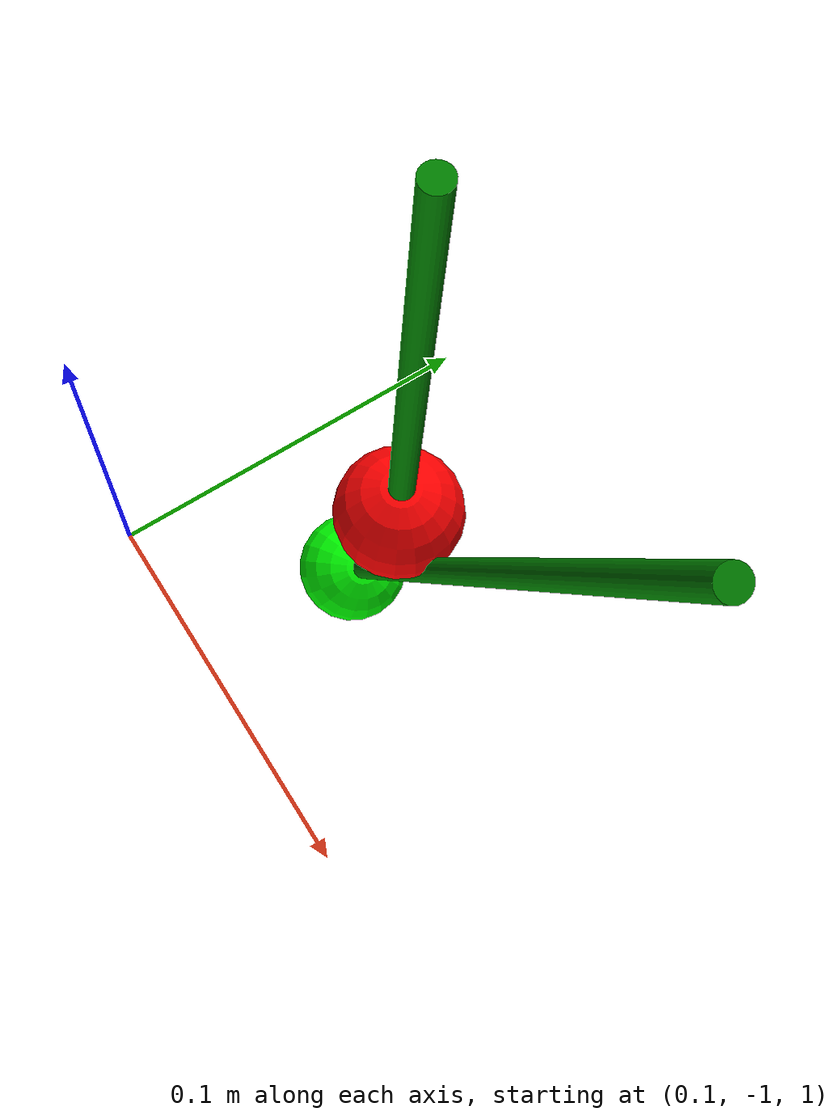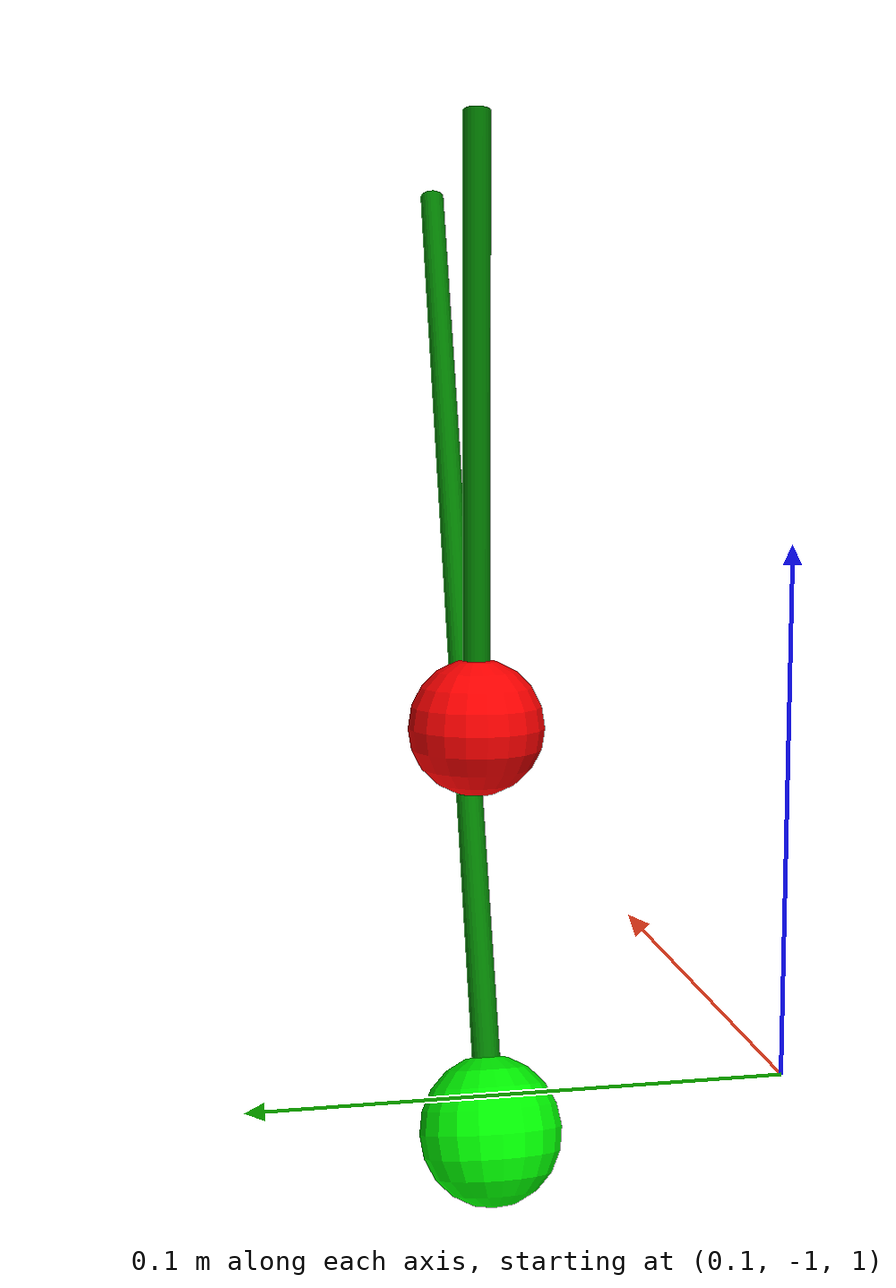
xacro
<?xml version="1.0"?>
<robot xmlns:xacro="http://www.ros.org/wiki/xacro" name="straw_cluster7">

<xacro:arg name="tf_prefix" default=""/>

<link name="world"/>

<xacro:arg name="parent_cluster" default="world"/>

<!-- Robot19 -->
<link name="$(arg tf_prefix)/yball_stem71">
  <gravity>1</gravity>
  <inertial>
    <origin xyz="0 0 0" rpy="0 0 0"/>
    <mass value=".00001"/>
    <inertia ixx="0.0000004" ixy="0.0" ixz="0.0" iyy="0.0000004" iyz="0.0" izz="0.0000004" />
  </inertial>
  <visual><geometry><sphere radius=".00001"/></geometry></visual>
  <collision><geometry><sphere radius=".00001"/></geometry></collision>
</link>
<gazebo reference="$(arg tf_prefix)/yball_stem71">
  <material>Gazebo/Green</material>
</gazebo>

<joint name="$(arg tf_prefix)/stem71y" type="revolute" >
  <parent link="$(arg parent_cluster)" />
  <child link="$(arg tf_prefix)/yball_stem71" />
  <origin xyz="0.15 -0.95 1.19" rpy="0 0 0"/>
  <axis xyz="0 1 0" />
  <dynamics damping="0.0001" friction="0.0002"/>
  <limit
      lower="-${pi}" upper="${pi}"
      effort="0.1" velocity="1" />
</joint>

<link name="$(arg tf_prefix)/xball_stem71">
  <gravity>1</gravity>
  <inertial>
    <origin xyz="0 0 0" rpy="0 0 0"/>
    <mass value=".00001"/>
    <inertia ixx="0.0000004" ixy="0.0" ixz="0.0" iyy="0.0000004" iyz="0.0" izz="0.0000004" />
  </inertial>
  <visual><geometry><sphere radius=".00001"/></geometry></visual>
  <collision><geometry><sphere radius=".00001"/></geometry></collision>
</link>
<gazebo reference="$(arg tf_prefix)/xball_stem71">
  <material>Gazebo/Green</material>
</gazebo>

<joint name="$(arg tf_prefix)/stem71x" type="revolute" >
  <parent link="$(arg tf_prefix)/yball_stem71"/>
  <child link="$(arg tf_prefix)/xball_stem71"/>
  <origin xyz="0 0 0" rpy="0 0 0"/>
  <axis xyz="1 0 0" />
  <dynamics damping="0.0001" friction="0.0002" />
  <limit
      lower="-${pi}" upper="${pi}"
      effort="0.1" velocity="1" />
</joint>

<!-- Define stem of straw71 -->
<link name="$(arg tf_prefix)/stem71">
  <inertial>
    <origin xyz="0 0 0" rpy="0 0 0"/>
    <mass value="0.0002"/>
    <inertia
      ixx="0.0000000005" ixy="0.0" ixz="0.0"
      iyy="0.0000000005" iyz="0.0"
      izz="0.0000000005"/>
  </inertial>
  <collision>
    <geometry>
		<cylinder length="0.1" radius="0.003"/>
    </geometry>
    <material name="green">
      <color rgba="0 ${128/255} 0 1"/>
    </material>
    <origin xyz="0 0 -0.065" rpy="0 0 0"/>
  </collision>
  <visual>
    <geometry>
		<cylinder length="0.13" radius="0.003"/>
    </geometry>
    <material name="green">
      <color rgba="0 ${128/255} 0 1"/>
    </material>
    <origin xyz="0 0 -0.065" rpy="0 0 0"/>
  </visual>
</link>
<gazebo reference="$(arg tf_prefix)/stem71">
  <mu1>0.01</mu1>
  <mu2>0.01</mu2>
  <selfCollide>true</selfCollide>
  <maxContacts>2</maxContacts>
  <minDepth>0</minDepth>
  <maxVel>0.01</maxVel>
  <kp  value="1" />
  <kd  value="0.01" />
  <material>Gazebo/Green</material>
</gazebo>

<joint name="$(arg tf_prefix)/xball_stem71" type="fixed">
  <parent link="$(arg tf_prefix)/xball_stem71"/>
  <child link="$(arg tf_prefix)/stem71"/>
  <origin xyz="0 0 0" rpy="0 0 0"/>
</joint>

<!-- Define straw71 -->
<link name="$(arg tf_prefix)/straw71">
  <gravity>1</gravity>
  <inertial>
    <origin xyz="0 0 0" rpy="0 0 0"/>
    <mass value="0.0002"/>
    <inertia
      ixx="0.00000018" ixy="0.0" ixz="0.0"
      iyy="0.00000018" iyz="0.0"
      izz="0.00000018"/>
  </inertial>
  <collision>
    <geometry>
    	<sphere radius="0.015"/>
    </geometry>
  </collision>
  <visual>
    <geometry>
		<sphere radius="0.015"/>
    </geometry>
    <material name="Red">
      <color rgba="1 0 0 1"/>
    </material>
  </visual>
</link>
<gazebo reference="$(arg tf_prefix)/straw71">
  <mu1>0.01</mu1>
  <mu2>0.01</mu2>
  <selfCollide>true</selfCollide>
  <maxContacts>2</maxContacts>
  <minDepth>0</minDepth>
  <maxVel>0.01</maxVel>
  <kp  value="1" />
  <kd  value="0.01" />
  <material>Gazebo/Red</material>
</gazebo>

<joint name="$(arg tf_prefix)/straw71_stem71" type="revolute">
  <parent link="$(arg tf_prefix)/stem71"/>
  <child link="$(arg tf_prefix)/straw71"/>
  <origin xyz="0 0 -0.13" rpy="0 0 0"/>
  <axis xyz="0 1 0" />
  <dynamics damping="0.0000001" friction="0.0000002"/>
  <limit
      lower="-${pi}" upper="${pi}"
      effort="0.01" velocity="0.1" />
</joint>

<!-- Robot20 -->
<link name="$(arg tf_prefix)/yball_stem72">
  <gravity>1</gravity>
  <inertial>
    <origin xyz="0 0 0" rpy="0 0 0"/>
    <mass value=".00001"/>
    <inertia ixx="0.00001" ixy="0.0" ixz="0.0" iyy="0.00001" iyz="0.0" izz="0.00001" />
  </inertial>
  <visual><geometry><sphere radius=".00001"/></geometry></visual>
  <collision><geometry><sphere radius=".00001"/></geometry></collision>
</link>
<gazebo reference="$(arg tf_prefix)/yball_stem72">
  <material>Gazebo/Green</material>
</gazebo>

<joint name="$(arg tf_prefix)/stem72y" type="revolute" >
  <parent link="$(arg parent_cluster)" />
  <child link="$(arg tf_prefix)/yball_stem72" />
  <origin xyz="0.22 -0.95 1.19" rpy="0 ${pi/8} 0"/>
  <axis xyz="0 1 0" />
  <dynamics damping="0.0001" friction="0.0002"/>
  <limit
      lower="-${pi}" upper="${pi}"
      effort="100" velocity="1" />
</joint>

<link name="$(arg tf_prefix)/xball_stem72">
  <gravity>1</gravity>
  <inertial>
    <origin xyz="0 0 0" rpy="0 0 0"/>
    <mass value=".00001"/>
    <inertia ixx="0.00001" ixy="0.0" ixz="0.0" iyy="0.00001" iyz="0.0" izz="0.00001" />
  </inertial>
  <visual><geometry><sphere radius=".00001"/></geometry></visual>
  <collision><geometry><sphere radius=".00001"/></geometry></collision>
</link>
<gazebo reference="$(arg tf_prefix)/xball_stem72">
  <material>Gazebo/Green</material>
</gazebo>

<joint name="$(arg tf_prefix)/stem72x" type="revolute" >
  <parent link="$(arg tf_prefix)/yball_stem72"/>
  <child link="$(arg tf_prefix)/xball_stem72"/>
  <origin xyz="0 0 0" rpy="0 0 0"/>
  <axis xyz="1 0 0" />
  <dynamics damping="0.0001" friction="0.0002"/>
  <limit
      lower="-${pi}" upper="${pi}"
      effort="100" velocity="1" />
</joint>

<!-- Define stem of straw72 -->
<link name="$(arg tf_prefix)/stem72">
  <gravity>1</gravity>
  <inertial>
    <origin xyz="0 0 0" rpy="0 0 0"/>
    <mass value="0.0001"/>
    <inertia
      ixx="0.0000000005" ixy="0.0" ixz="0.0"
      iyy="0.0000000005" iyz="0.0"
      izz="0.0000000005"/>
  </inertial>
  <collision>
    <geometry>
		<cylinder length="0.23" radius="0.003"/> <!-- was 0.15 -->
    </geometry>
    <material name="green">
      <color rgba="0 ${128/255} 0 1"/>
    </material>
    <origin xyz="0 0 -0.115" rpy="0 0 0"/>
  </collision>
  <visual>
    <geometry>
		<cylinder length="0.23" radius="0.003"/>
    </geometry>
    <material name="green">
      <color rgba="0 ${128/255} 0 1"/>
    </material>
    <origin xyz="0 0 -0.115" rpy="0 0 0"/>
  </visual>
</link>
<gazebo reference="$(arg tf_prefix)/stem72">
  <mu1>0.01</mu1>
  <mu2>0.01</mu2>
  <selfCollide>true</selfCollide>
  <maxContacts>2</maxContacts>
  <minDepth>0</minDepth>
  <maxVel>0.01</maxVel>
  <kp  value="1000" />
  <kd  value="1" />
  <material>Gazebo/Green</material>
</gazebo>

<joint name="$(arg tf_prefix)/xball_stem72" type="fixed">
  <parent link="$(arg tf_prefix)/xball_stem72"/>
  <child link="$(arg tf_prefix)/stem72"/>
  <origin xyz="0 0 0" rpy="0 0 0"/>
</joint>

<!-- Define straw72 -->
<link name="$(arg tf_prefix)/straw72">
  <gravity>1</gravity>
  <inertial>
    <origin xyz="0 0 0" rpy="0 0 0"/>
    <mass value="0.0002"/>
    <inertia
      ixx="0.00000018" ixy="0.0" ixz="0.0"
      iyy="0.00000018" iyz="0.0"
      izz="0.00000018"/>
  </inertial>
  <collision>
    <geometry>
    	<sphere radius="0.015"/>
    </geometry>
  </collision>
  <visual>
    <geometry>
		<sphere radius="0.015"/>
    </geometry>
    <material name="green">
      <color rgba="0 1 0 1"/>
    </material>
  </visual>
</link>
<gazebo reference="$(arg tf_prefix)/straw72">
  <mu1>0.01</mu1>
  <mu2>0.01</mu2>
  <selfCollide>true</selfCollide>
  <maxContacts>2</maxContacts>
  <minDepth>0</minDepth>
  <maxVel>0.01</maxVel>
  <kp  value="1000" />
  <kd  value="1" />
  <material>Gazebo/Green</material>
</gazebo>

<joint name="$(arg tf_prefix)/straw72_stem72" type="revolute" >
  <parent link="$(arg tf_prefix)/stem72"/>
  <child link="$(arg tf_prefix)/straw72"/>
  <origin xyz="0 0 -0.23" rpy="0 0 0"/>
  <axis xyz="0 1 0" />
  <dynamics damping="0.0000001" friction="0.0000002"/>
  <limit
      lower="-${pi}" upper="${pi}"
      effort="0.01" velocity="0.1" />
</joint>

<gazebo>
  <plugin name="gazebo_ros_control" filename="libgazebo_ros_control.so">
    <robotSimType>gazebo_ros_control/DefaultRobotHWSim</robotSimType>
    <legacyModeNS>true</legacyModeNS>
    <robotNamespace>/straw_cluster7</robotNamespace>
  </plugin>
</gazebo>

</robot>
